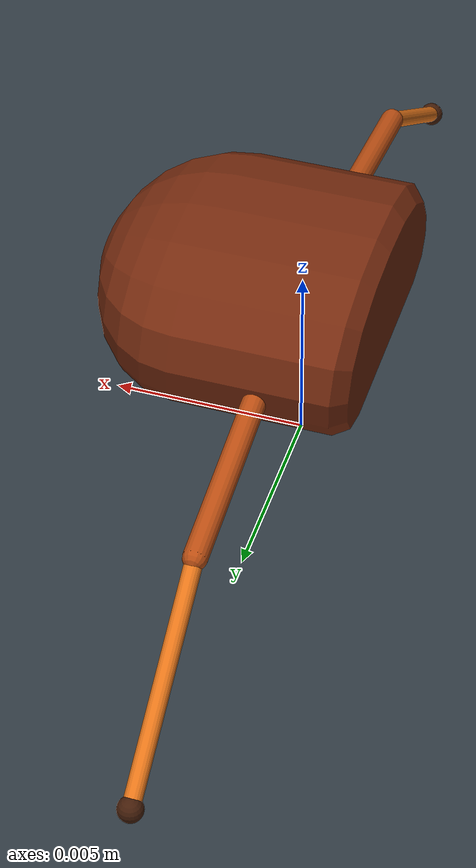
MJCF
<mujoco model="centipede_1">
  <!-- Isolated head review; edit configs/head.json. -->
  <compiler angle="degree" autolimits="true" />
  <option timestep="0.0001" integrator="implicitfast" gravity="0 0 -9.81" iterations="80" tolerance="1e-10" cone="elliptic" />
  <size nuser_geom="2" nuser_actuator="1" />
  <statistic center="0 0 0.003" extent="0.035" />
  <custom>
    <text name="model_config" data="{&quot;segments&quot;:1,&quot;body&quot;:{&quot;shape&quot;:&quot;rounded_head&quot;,&quot;width_m&quot;:0.008,&quot;length_m&quot;:0.0044,&quot;height_m&quot;:0.0034,&quot;mass_kg&quot;:7e-05,&quot;shoulder_y_m&quot;:0.0039,&quot;shoulder_z_m&quot;:-0.0006,&quot;front_extension_m&quot;:0.0028},&quot;leg&quot;:{&quot;upper_length_m&quot;:0.0046,&quot;lower_length_m&quot;:0.0058,&quot;upper_radius_m&quot;:0.0003,&quot;lower_radius_m&quot;:0.00022,&quot;foot_radius_m&quot;:0.00032,&quot;upper_mass_kg&quot;:3e-06,&quot;lower_mass_kg&quot;:2e-06,&quot;foot_mass_kg&quot;:2e-07,&quot;upper_down_deg&quot;:10,&quot;lower_down_deg&quot;:35,&quot;sweep_range_deg&quot;:[-35,35],&quot;lift_range_deg&quot;:[-25,40],&quot;knee_range_deg&quot;:[-20,50],&quot;torque_nm&quot;:2e-05,&quot;damping_nms&quot;:5e-07,&quot;armature_kgm2&quot;:1e-10},&quot;physics&quot;:{&quot;timestep_s&quot;:0.0001,&quot;gravity_m_s2&quot;:9.81,&quot;friction&quot;:[0.8,0.0001,1e-05],&quot;contact_timeconst_s&quot;:0.0004,&quot;limit_timeconst_s&quot;:0.001,&quot;contact_dampratio&quot;:1.0,&quot;spawn_gap_m&quot;:5e-05}}" />
  </custom>
  <default>
    <joint limited="true" damping="5e-07" armature="1e-10" solreflimit="0.001 1" solimplimit="0.95 0.99 0.001" />
    <geom friction="0.8 0.0001 1e-05" condim="3" solref="0.0004 1" solimp="0.95 0.99 0.0001" margin="0" contype="1" conaffinity="1" />
  </default>
  <visual>
    <global offwidth="1200" offheight="900" />
    <map znear="0.005" zfar="30" />
    <scale jointlength="0.3" jointwidth="0.015" />
  </visual>
  <asset>
    <mesh name="head_envelope" inertia="convex" vertex="-0.0022 0 0.00136 -0.0022 0.001296 0.0012682 -0.0022 0.002448 0.0009316 -0.0022 0.00324 0.0003808 -0.0022 0.0036 -0.0003536 -0.0022 0.0036 -0.0009656 -0.0022 0.003312 -0.0014552 -0.0022 0.00252 -0.0017 -0.0022 -0.00252 -0.0017 -0.0022 -0.003312 -0.0014552 -0.0022 -0.0036 -0.0009656 -0.0022 -0.0036 -0.0003536 -0.0022 -0.00324 0.0003808 -0.0022 -0.002448 0.0009316 -0.0022 -0.001296 0.0012682 -0.001848 0 0.0017 -0.001848 0.00144 0.001598 -0.001848 0.00272 0.001224 -0.001848 0.0036 0.000612 -0.001848 0.004 -0.000204 -0.001848 0.004 -0.000884 -0.001848 0.00368 -0.001428 -0.001848 0.0028 -0.0017 -0.001848 -0.0028 -0.0017 -0.001848 -0.00368 -0.001428 -0.001848 -0.004 -0.000884 -0.001848 -0.004 -0.000204 -0.001848 -0.0036 0.000612 -0.001848 -0.00272 0.001224 -0.001848 -0.00144 0.001598 0.0022 0 0.0017 0.0022 0.00144 0.001598 0.0022 0.00272 0.001224 0.0022 0.0036 0.000612 0.0022 0.004 -0.000204 0.0022 0.004 -0.000884 0.0022 0.00368 -0.001428 0.0022 0.0028 -0.0017 0.0022 -0.0028 -0.0017 0.0022 -0.00368 -0.001428 0.0022 -0.004 -0.000884 0.0022 -0.004 -0.000204 0.0022 -0.0036 0.000612 0.0022 -0.00272 0.001224 0.0022 -0.00144 0.001598 0.00292469332629 0 0.00164207390469 0.00292469332629 0.00139093318986 0.00154354947041 0.00292469332629 0.00262731824751 0.00118229321138 0.00292469332629 0.00347733297464 0.000591146605689 0.00292469332629 0.00386370330516 -0.000197048868563 0.00292469332629 0.00386370330516 -0.00085387843044 0.00292469332629 0.00355460704074 -0.00137934207994 0.00292469332629 0.00270459231361 -0.00164207390469 0.00292469332629 -0.00270459231361 -0.00164207390469 0.00292469332629 -0.00355460704074 -0.00137934207994 0.00292469332629 -0.00386370330516 -0.00085387843044 0.00292469332629 -0.00386370330516 -0.000197048868563 0.00292469332629 -0.00347733297464 0.000591146605689 0.00292469332629 -0.00262731824751 0.00118229321138 0.00292469332629 -0.00139093318986 0.00154354947041 0.0036 0 0.00147224318643 0.0036 0.00124707658145 0.00138390859525 0.0036 0.00235558909829 0.00106001509423 0.0036 0.00311769145362 0.000530007547116 0.0036 0.00346410161514 -0.000176669182372 0.0036 0.00346410161514 -0.000765566456945 0.0036 0.00318697348593 -0.0012366842766 0.0036 0.0024248711306 -0.00147224318643 0.0036 -0.0024248711306 -0.00147224318643 0.0036 -0.00318697348593 -0.0012366842766 0.0036 -0.00346410161514 -0.000765566456945 0.0036 -0.00346410161514 -0.000176669182372 0.0036 -0.00311769145362 0.000530007547116 0.0036 -0.00235558909829 0.00106001509423 0.0036 -0.00124707658145 0.00138390859525 0.00417989898732 0 0.00120208152802 0.00417989898732 0.00101823376491 0.00112995663634 0.00417989898732 0.00192333044483 0.000865498700172 0.00417989898732 0.00254558441227 0.000432749350086 0.00417989898732 0.00282842712475 -0.000144249783362 0.00417989898732 0.00282842712475 -0.000625082394569 0.00417989898732 0.00260215295477 -0.00100974848353 0.00417989898732 0.00197989898732 -0.00120208152802 0.00417989898732 -0.00197989898732 -0.00120208152802 0.00417989898732 -0.00260215295477 -0.00100974848353 0.00417989898732 -0.00282842712475 -0.000625082394569 0.00417989898732 -0.00282842712475 -0.000144249783362 0.00417989898732 -0.00254558441227 0.000432749350086 0.00417989898732 -0.00192333044483 0.000865498700172 0.00417989898732 -0.00101823376491 0.00112995663634 0.0046248711306 0 0.00085 0.0046248711306 0.00072 0.000799 0.0046248711306 0.00136 0.000612 0.0046248711306 0.0018 0.000306 0.0046248711306 0.002 -0.000102 0.0046248711306 0.002 -0.000442 0.0046248711306 0.00184 -0.000714 0.0046248711306 0.0014 -0.00085 0.0046248711306 -0.0014 -0.00085 0.0046248711306 -0.00184 -0.000714 0.0046248711306 -0.002 -0.000442 0.0046248711306 -0.002 -0.000102 0.0046248711306 -0.0018 0.000306 0.0046248711306 -0.00136 0.000612 0.0046248711306 -0.00072 0.000799 0.00490459231361 0 0.000439992376674 0.00490459231361 0.000372699424948 0.000413592834074 0.00490459231361 0.000703987802679 0.000316794511205 0.00490459231361 0.000931748562369 0.000158397255603 0.00490459231361 0.00103527618041 -5.27990852009e-05 0.00490459231361 0.00103527618041 -0.000228796035871 0.00490459231361 0.000952454085977 -0.000369593596406 0.00490459231361 0.000724693326287 -0.000439992376674 0.00490459231361 -0.000724693326287 -0.000439992376674 0.00490459231361 -0.000952454085977 -0.000369593596406 0.00490459231361 -0.00103527618041 -0.000228796035871 0.00490459231361 -0.00103527618041 -5.27990852009e-05 0.00490459231361 -0.000931748562369 0.000158397255603 0.00490459231361 -0.000703987802679 0.000316794511205 0.00490459231361 -0.000372699424948 0.000413592834074 0.005 0 0" smoothnormal="true" />
    <texture type="skybox" builtin="gradient" width="256" height="1536" rgb1="0.10 0.15 0.20" rgb2="0.35 0.40 0.44" />
    <texture name="ground" type="2d" builtin="checker" width="512" height="512" rgb1="0.16 0.20 0.23" rgb2="0.20 0.24 0.27" />
    <material name="ground" texture="ground" texrepeat="80 80" reflectance="0" />
  </asset>
  <worldbody>
    <light pos="0.02 -0.02 0.1" dir="0 0 -1" diffuse="0.9 0.9 0.9" directional="true" castshadow="false" />
    <geom name="floor" type="plane" size="0.5 0.5 0.001" material="ground" user="-1 0" />
    <body name="segment_00" pos="0 0 0.0050955249481">
      <freejoint name="root" />
      <geom name="segment_00_body" type="mesh" pos="0 0 0" mass="7e-05" rgba="0.45 0.16 0.055 1" user="0 1" mesh="head_envelope" />
      <site name="segment_00_center" pos="0 0 0" size="0.00015" rgba="0 0 0 0" group="3" />
      <site name="head_tip" pos="0.005 0 0" size="0.00025" rgba="0 0 0 0" />
      <body name="segment_00_left_upper" pos="0 0.0039 -0.0006">
        <joint name="segment_00_left_sweep" type="hinge" axis="0 0 -1" range="-35 35" />
        <joint name="segment_00_left_lift" type="hinge" axis="1 0 0" range="-25 40" />
        <geom name="segment_00_left_upper_geom" type="capsule" fromto="0 0 0 0 0.00453011566386 -0.000798781617268" size="0.0003" mass="3e-06" rgba="0.72 0.30 0.07 1" user="0 2" />
        <body name="segment_00_left_lower" pos="0 0.00453011566386 -0.000798781617268">
          <joint name="segment_00_left_knee" type="hinge" axis="-1 0 0" range="-20 50" />
          <geom name="segment_00_left_lower_geom" type="capsule" fromto="0 0 0 0 0.00475108185688 -0.00332674333084" size="0.00022" mass="2e-06" rgba="0.90 0.46 0.10 1" user="0 2" />
          <geom name="segment_00_left_foot" type="sphere" pos="0 0.00475108185688 -0.00332674333084" size="0.00032" mass="2e-07" rgba="0.26 0.11 0.035 1" user="0 3" />
          <site name="segment_00_left_tip" pos="0 0.00475108185688 -0.00332674333084" size="0.00015" rgba="0 0 0 0" group="3" />
        </body>
      </body>
      <body name="segment_00_right_upper" pos="0 -0.0039 -0.0006">
        <joint name="segment_00_right_sweep" type="hinge" axis="0 0 1" range="-35 35" />
        <joint name="segment_00_right_lift" type="hinge" axis="-1 0 0" range="-25 40" />
        <geom name="segment_00_right_upper_geom" type="capsule" fromto="0 0 0 0 -0.00453011566386 -0.000798781617268" size="0.0003" mass="3e-06" rgba="0.72 0.30 0.07 1" user="0 2" />
        <body name="segment_00_right_lower" pos="0 -0.00453011566386 -0.000798781617268">
          <joint name="segment_00_right_knee" type="hinge" axis="1 0 0" range="-20 50" />
          <geom name="segment_00_right_lower_geom" type="capsule" fromto="0 0 0 0 -0.00475108185688 -0.00332674333084" size="0.00022" mass="2e-06" rgba="0.90 0.46 0.10 1" user="0 2" />
          <geom name="segment_00_right_foot" type="sphere" pos="0 -0.00475108185688 -0.00332674333084" size="0.00032" mass="2e-07" rgba="0.26 0.11 0.035 1" user="0 3" />
          <site name="segment_00_right_tip" pos="0 -0.00475108185688 -0.00332674333084" size="0.00015" rgba="0 0 0 0" group="3" />
        </body>
      </body>
    </body>
  </worldbody>
  <actuator>
    <motor name="segment_00_left_sweep_motor" joint="segment_00_left_sweep" gear="2e-05" ctrlrange="-1 1" ctrllimited="true" forcerange="-1 1" forcelimited="true" user="0" />
    <motor name="segment_00_left_lift_motor" joint="segment_00_left_lift" gear="2e-05" ctrlrange="-1 1" ctrllimited="true" forcerange="-1 1" forcelimited="true" user="0" />
    <motor name="segment_00_left_knee_motor" joint="segment_00_left_knee" gear="2e-05" ctrlrange="-1 1" ctrllimited="true" forcerange="-1 1" forcelimited="true" user="0" />
    <motor name="segment_00_right_sweep_motor" joint="segment_00_right_sweep" gear="2e-05" ctrlrange="-1 1" ctrllimited="true" forcerange="-1 1" forcelimited="true" user="0" />
    <motor name="segment_00_right_lift_motor" joint="segment_00_right_lift" gear="2e-05" ctrlrange="-1 1" ctrllimited="true" forcerange="-1 1" forcelimited="true" user="0" />
    <motor name="segment_00_right_knee_motor" joint="segment_00_right_knee" gear="2e-05" ctrlrange="-1 1" ctrllimited="true" forcerange="-1 1" forcelimited="true" user="0" />
  </actuator>
</mujoco>
